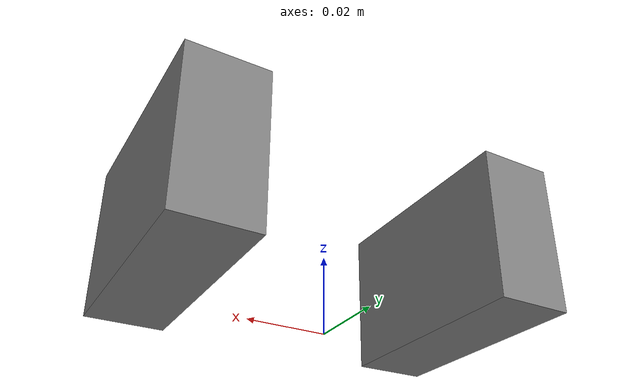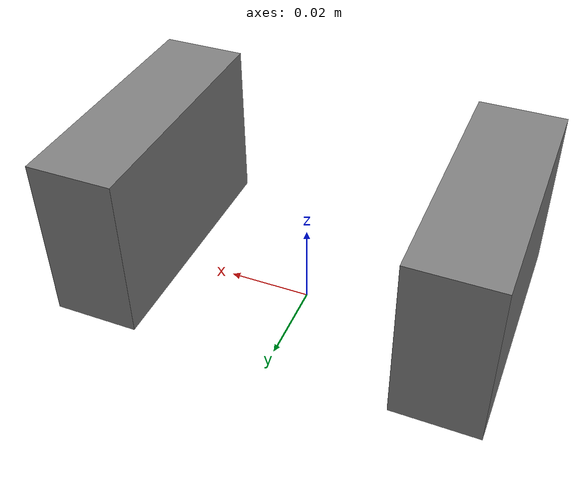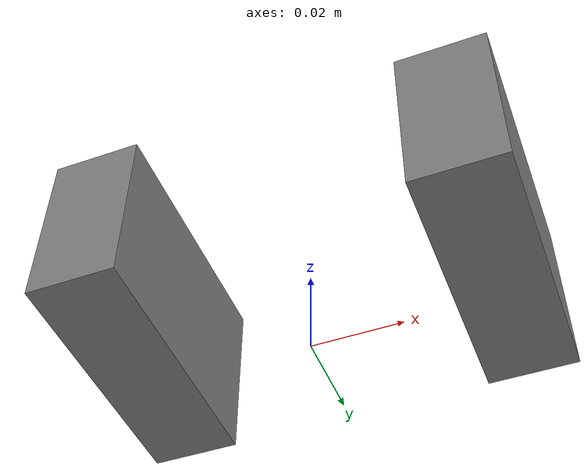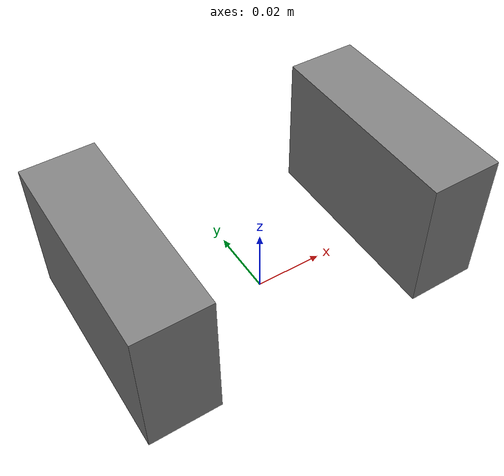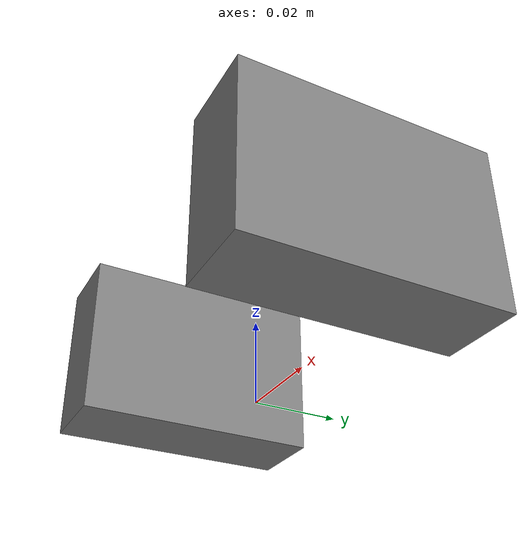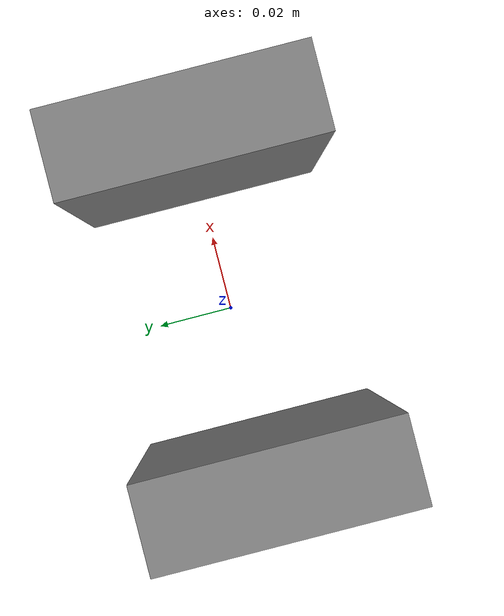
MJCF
<mujoco><compiler angle="radian"/><worldbody><body name="base"><body name="carriage"><joint name="lift" type="slide" axis="0 0 1" range="0 0.15" limited="true"/><inertial pos="0 0 0" mass="1" diaginertia="0.01 0.01 0.01"/>
<body name="left" pos="-0.04 0 0.025"><joint name="left_slide" type="slide" axis="1 0 0" range="0 0.03" limited="true"/><geom type="box" size="0.01 0.03 0.02" mass="0.1" friction="0.5"/></body>
<body name="right" pos="0.04 0 0.025"><joint name="right_slide" type="slide" axis="-1 0 0" range="0 0.03" limited="true"/><geom type="box" size="0.01 0.03 0.02" mass="0.1" friction="0.5"/></body></body></body></worldbody></mujoco>
